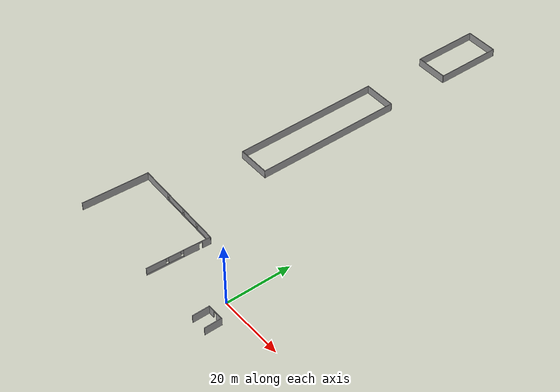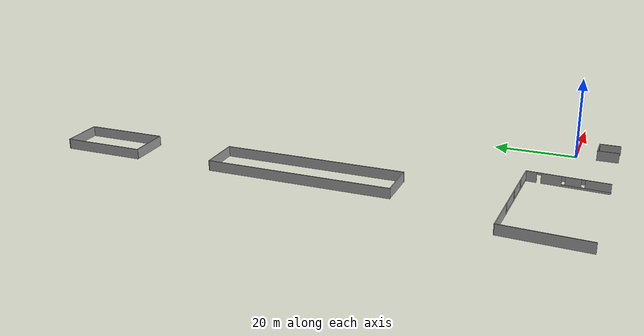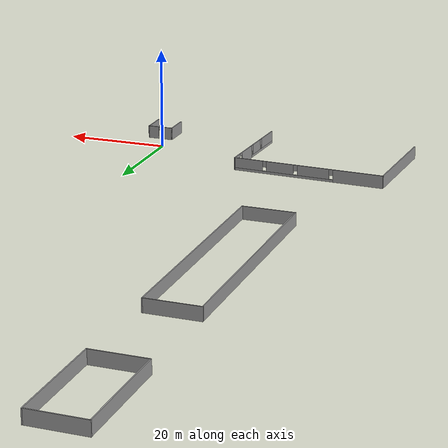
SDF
<?xml version='1.0'?>
<sdf version='1.4'>
  <model name='st_cyr_2'>
    <link name='Wall_0'>
      <collision name='Wall_0_Collision'>
        <geometry>
          <box>
            <size>20.225 0.2 2.5</size>
          </box>
        </geometry>
        <pose>0 0 1.25 0 -0 0</pose>
      </collision>
      <visual name='Wall_0_Visual'>
        <pose>0 0 1.25 0 -0 0</pose>
        <geometry>
          <box>
            <size>20.225 0.2 2.5</size>
          </box>
        </geometry>
        <material>
          <script>
            <uri>file://media/materials/scripts/gazebo.material</uri>
            <name>Gazebo/Grey</name>
          </script>
        </material>
      </visual>
      <velocity_decay>
        <linear>0</linear>
        <angular>0</angular>
      </velocity_decay>
      <pose>-49.5 0 0 0 -0 1.52084</pose>
    </link>
    <link name='Wall_1'>
      <pose>-34 9.5 0 0 0 -0.033321</pose>
      <visual name='Wall_1_Visual_0'>
        <pose>-10.1177 0 1.25 0 -0 0</pose>
        <geometry>
          <box>
            <size>9.98129 0.2 2.5</size>
          </box>
        </geometry>
        <material>
          <script>
            <uri>file://media/materials/scripts/gazebo.material</uri>
            <name>Gazebo/Grey</name>
          </script>
        </material>
      </visual>
      <collision name='Wall_1_Collision_0'>
        <geometry>
          <box>
            <size>9.98129 0.2 2.5</size>
          </box>
        </geometry>
        <pose>-10.1177 0 1.25 0 -0 0</pose>
      </collision>
      <visual name='Wall_1_Visual_1'>
        <pose>4.99065 0 0.25 0 -0 0</pose>
        <geometry>
          <box>
            <size>20.2354 0.2 0.5</size>
          </box>
        </geometry>
        <material>
          <script>
            <uri>file://media/materials/scripts/gazebo.material</uri>
            <name>Gazebo/Grey</name>
          </script>
        </material>
      </visual>
      <collision name='Wall_1_Collision_1'>
        <geometry>
          <box>
            <size>20.2354 0.2 0.5</size>
          </box>
        </geometry>
        <pose>4.99065 0 0.25 0 -0 0</pose>
      </collision>
      <visual name='Wall_1_Visual_2'>
        <pose>-1.11012 0 1.5 0 -0 0</pose>
        <geometry>
          <box>
            <size>6.43387 0.2 2</size>
          </box>
        </geometry>
        <material>
          <script>
            <uri>file://media/materials/scripts/gazebo.material</uri>
            <name>Gazebo/Grey</name>
          </script>
        </material>
      </visual>
      <collision name='Wall_1_Collision_2'>
        <geometry>
          <box>
            <size>6.43387 0.2 2</size>
          </box>
        </geometry>
        <pose>-1.11012 0 1.5 0 -0 0</pose>
      </collision>
      <visual name='Wall_1_Visual_3'>
        <pose>5.65364 0 1.5 0 -0 0</pose>
        <geometry>
          <box>
            <size>5.49367 0.2 2</size>
          </box>
        </geometry>
        <material>
          <script>
            <uri>file://media/materials/scripts/gazebo.material</uri>
            <name>Gazebo/Grey</name>
          </script>
        </material>
      </visual>
      <collision name='Wall_1_Collision_3'>
        <geometry>
          <box>
            <size>5.49367 0.2 2</size>
          </box>
        </geometry>
        <pose>5.65364 0 1.5 0 -0 0</pose>
      </collision>
      <visual name='Wall_1_Visual_4'>
        <pose>12.1544 0 1.5 0 -0 0</pose>
        <geometry>
          <box>
            <size>5.90787 0.2 2</size>
          </box>
        </geometry>
        <material>
          <script>
            <uri>file://media/materials/scripts/gazebo.material</uri>
            <name>Gazebo/Grey</name>
          </script>
        </material>
      </visual>
      <collision name='Wall_1_Collision_4'>
        <geometry>
          <box>
            <size>5.90787 0.2 2</size>
          </box>
        </geometry>
        <pose>12.1544 0 1.5 0 -0 0</pose>
      </collision>
      <visual name='Wall_1_Visual_5'>
        <pose>-4.72706 0 1.9 0 -0 0</pose>
        <geometry>
          <box>
            <size>0.8 0.2 1.2</size>
          </box>
        </geometry>
        <material>
          <script>
            <uri>file://media/materials/scripts/gazebo.material</uri>
            <name>Gazebo/Grey</name>
          </script>
        </material>
      </visual>
      <collision name='Wall_1_Collision_5'>
        <geometry>
          <box>
            <size>0.8 0.2 1.2</size>
          </box>
        </geometry>
        <pose>-4.72706 0 1.9 0 -0 0</pose>
      </collision>
      <visual name='Wall_1_Visual_6'>
        <pose>2.50681 0 1.9 0 -0 0</pose>
        <geometry>
          <box>
            <size>0.8 0.2 1.2</size>
          </box>
        </geometry>
        <material>
          <script>
            <uri>file://media/materials/scripts/gazebo.material</uri>
            <name>Gazebo/Grey</name>
          </script>
        </material>
      </visual>
      <collision name='Wall_1_Collision_6'>
        <geometry>
          <box>
            <size>0.8 0.2 1.2</size>
          </box>
        </geometry>
        <pose>2.50681 0 1.9 0 -0 0</pose>
      </collision>
      <visual name='Wall_1_Visual_7'>
        <pose>8.80048 0 1.9 0 -0 0</pose>
        <geometry>
          <box>
            <size>0.8 0.2 1.2</size>
          </box>
        </geometry>
        <material>
          <script>
            <uri>file://media/materials/scripts/gazebo.material</uri>
            <name>Gazebo/Grey</name>
          </script>
        </material>
      </visual>
      <collision name='Wall_1_Collision_7'>
        <geometry>
          <box>
            <size>0.8 0.2 1.2</size>
          </box>
        </geometry>
        <pose>8.80048 0 1.9 0 -0 0</pose>
      </collision>
    </link>
    <link name='Wall_10'>
      <collision name='Wall_10_Collision'>
        <geometry>
          <box>
            <size>45.2 0.2 2.5</size>
          </box>
        </geometry>
        <pose>0 0 1.25 0 -0 0</pose>
      </collision>
      <visual name='Wall_10_Visual'>
        <pose>0 0 1.25 0 -0 0</pose>
        <geometry>
          <box>
            <size>45.2 0.2 2.5</size>
          </box>
        </geometry>
        <material>
          <script>
            <uri>file://media/materials/scripts/gazebo.material</uri>
            <name>Gazebo/Grey</name>
          </script>
        </material>
      </visual>
      <velocity_decay>
        <linear>0</linear>
        <angular>0</angular>
      </velocity_decay>
      <pose>-30 57.5 0 0 -0 1.5708</pose>
    </link>
    <link name='Wall_11'>
      <collision name='Wall_11_Collision'>
        <geometry>
          <box>
            <size>10.2 0.2 2.5</size>
          </box>
        </geometry>
        <pose>0 0 1.25 0 -0 0</pose>
      </collision>
      <visual name='Wall_11_Visual'>
        <pose>0 0 1.25 0 -0 0</pose>
        <geometry>
          <box>
            <size>10.2 0.2 2.5</size>
          </box>
        </geometry>
        <material>
          <script>
            <uri>file://media/materials/scripts/gazebo.material</uri>
            <name>Gazebo/Grey</name>
          </script>
        </material>
      </visual>
      <velocity_decay>
        <linear>0</linear>
        <angular>0</angular>
      </velocity_decay>
      <pose>-35 80 0 0 -0 3.14159</pose>
    </link>
    <link name='Wall_13'>
      <collision name='Wall_13_Collision'>
        <geometry>
          <box>
            <size>20.2 0.2 2.5</size>
          </box>
        </geometry>
        <pose>0 0 1.25 0 -0 0</pose>
      </collision>
      <visual name='Wall_13_Visual'>
        <pose>0 0 1.25 0 -0 0</pose>
        <geometry>
          <box>
            <size>20.2 0.2 2.5</size>
          </box>
        </geometry>
        <material>
          <script>
            <uri>file://media/materials/scripts/gazebo.material</uri>
            <name>Gazebo/Grey</name>
          </script>
        </material>
      </visual>
      <velocity_decay>
        <linear>0</linear>
        <angular>0</angular>
      </velocity_decay>
      <pose>-40 110 0 0 0 -1.5708</pose>
    </link>
    <link name='Wall_14'>
      <collision name='Wall_14_Collision'>
        <geometry>
          <box>
            <size>10.2 0.2 2.5</size>
          </box>
        </geometry>
        <pose>0 0 1.25 0 -0 0</pose>
      </collision>
      <visual name='Wall_14_Visual'>
        <pose>0 0 1.25 0 -0 0</pose>
        <geometry>
          <box>
            <size>10.2 0.2 2.5</size>
          </box>
        </geometry>
        <material>
          <script>
            <uri>file://media/materials/scripts/gazebo.material</uri>
            <name>Gazebo/Grey</name>
          </script>
        </material>
      </visual>
      <velocity_decay>
        <linear>0</linear>
        <angular>0</angular>
      </velocity_decay>
      <pose>-35 100 0 0 -0 0</pose>
    </link>
    <link name='Wall_15'>
      <collision name='Wall_15_Collision'>
        <geometry>
          <box>
            <size>20.2 0.2 2.5</size>
          </box>
        </geometry>
        <pose>0 0 1.25 0 -0 0</pose>
      </collision>
      <visual name='Wall_15_Visual'>
        <pose>0 0 1.25 0 -0 0</pose>
        <geometry>
          <box>
            <size>20.2 0.2 2.5</size>
          </box>
        </geometry>
        <material>
          <script>
            <uri>file://media/materials/scripts/gazebo.material</uri>
            <name>Gazebo/Grey</name>
          </script>
        </material>
      </visual>
      <velocity_decay>
        <linear>0</linear>
        <angular>0</angular>
      </velocity_decay>
      <pose>-30 110 0 0 -0 1.5708</pose>
    </link>
    <link name='Wall_16'>
      <collision name='Wall_16_Collision'>
        <geometry>
          <box>
            <size>10.2 0.2 2.5</size>
          </box>
        </geometry>
        <pose>0 0 1.25 0 -0 0</pose>
      </collision>
      <visual name='Wall_16_Visual'>
        <pose>0 0 1.25 0 -0 0</pose>
        <geometry>
          <box>
            <size>10.2 0.2 2.5</size>
          </box>
        </geometry>
        <material>
          <script>
            <uri>file://media/materials/scripts/gazebo.material</uri>
            <name>Gazebo/Grey</name>
          </script>
        </material>
      </visual>
      <velocity_decay>
        <linear>0</linear>
        <angular>0</angular>
      </velocity_decay>
      <pose>-35 120 0 0 -0 3.14159</pose>
    </link>
    <link name='Wall_2'>
      <pose>-19.5 -0.5 0 0 0 -1.62338</pose>
      <visual name='Wall_2_Visual_0'>
        <pose>-8.31308 0 1.25 0 -0 0</pose>
        <geometry>
          <box>
            <size>2.60014 0.2 2.5</size>
          </box>
        </geometry>
        <material>
          <script>
            <uri>file://media/materials/scripts/gazebo.material</uri>
            <name>Gazebo/Grey</name>
          </script>
        </material>
      </visual>
      <collision name='Wall_2_Collision_0'>
        <geometry>
          <box>
            <size>2.60014 0.2 2.5</size>
          </box>
        </geometry>
        <pose>-8.31308 0 1.25 0 -0 0</pose>
      </collision>
      <visual name='Wall_2_Visual_1'>
        <pose>-3.68568 0 1.25 0 -0 0</pose>
        <geometry>
          <box>
            <size>4.65465 0.2 2.5</size>
          </box>
        </geometry>
        <material>
          <script>
            <uri>file://media/materials/scripts/gazebo.material</uri>
            <name>Gazebo/Grey</name>
          </script>
        </material>
      </visual>
      <collision name='Wall_2_Collision_1'>
        <geometry>
          <box>
            <size>4.65465 0.2 2.5</size>
          </box>
        </geometry>
        <pose>-3.68568 0 1.25 0 -0 0</pose>
      </collision>
      <visual name='Wall_2_Visual_2'>
        <pose>4.1274 0 0.25 0 -0 0</pose>
        <geometry>
          <box>
            <size>10.9715 0.2 0.5</size>
          </box>
        </geometry>
        <material>
          <script>
            <uri>file://media/materials/scripts/gazebo.material</uri>
            <name>Gazebo/Grey</name>
          </script>
        </material>
      </visual>
      <collision name='Wall_2_Collision_2'>
        <geometry>
          <box>
            <size>10.9715 0.2 0.5</size>
          </box>
        </geometry>
        <pose>4.1274 0 0.25 0 -0 0</pose>
      </collision>
      <visual name='Wall_2_Visual_3'>
        <pose>1.25925 0 1.5 0 -0 0</pose>
        <geometry>
          <box>
            <size>3.63521 0.2 2</size>
          </box>
        </geometry>
        <material>
          <script>
            <uri>file://media/materials/scripts/gazebo.material</uri>
            <name>Gazebo/Grey</name>
          </script>
        </material>
      </visual>
      <collision name='Wall_2_Collision_3'>
        <geometry>
          <box>
            <size>3.63521 0.2 2</size>
          </box>
        </geometry>
        <pose>1.25925 0 1.5 0 -0 0</pose>
      </collision>
      <visual name='Wall_2_Visual_4'>
        <pose>6.745 0 1.5 0 -0 0</pose>
        <geometry>
          <box>
            <size>5.7363 0.2 2</size>
          </box>
        </geometry>
        <material>
          <script>
            <uri>file://media/materials/scripts/gazebo.material</uri>
            <name>Gazebo/Grey</name>
          </script>
        </material>
      </visual>
      <collision name='Wall_2_Collision_4'>
        <geometry>
          <box>
            <size>5.7363 0.2 2</size>
          </box>
        </geometry>
        <pose>6.745 0 1.5 0 -0 0</pose>
      </collision>
      <visual name='Wall_2_Visual_5'>
        <pose>-0.958357 0 1.9 0 -0 0</pose>
        <geometry>
          <box>
            <size>0.8 0.2 1.2</size>
          </box>
        </geometry>
        <material>
          <script>
            <uri>file://media/materials/scripts/gazebo.material</uri>
            <name>Gazebo/Grey</name>
          </script>
        </material>
      </visual>
      <collision name='Wall_2_Collision_5'>
        <geometry>
          <box>
            <size>0.8 0.2 1.2</size>
          </box>
        </geometry>
        <pose>-0.958357 0 1.9 0 -0 0</pose>
      </collision>
      <visual name='Wall_2_Visual_6'>
        <pose>3.47685 0 1.9 0 -0 0</pose>
        <geometry>
          <box>
            <size>0.8 0.2 1.2</size>
          </box>
        </geometry>
        <material>
          <script>
            <uri>file://media/materials/scripts/gazebo.material</uri>
            <name>Gazebo/Grey</name>
          </script>
        </material>
      </visual>
      <collision name='Wall_2_Collision_6'>
        <geometry>
          <box>
            <size>0.8 0.2 1.2</size>
          </box>
        </geometry>
        <pose>3.47685 0 1.9 0 -0 0</pose>
      </collision>
      <visual name='Wall_2_Visual_7'>
        <pose>-6.51301 0 2.25 0 -0 0</pose>
        <geometry>
          <box>
            <size>1 0.2 0.5</size>
          </box>
        </geometry>
        <material>
          <script>
            <uri>file://media/materials/scripts/gazebo.material</uri>
            <name>Gazebo/Grey</name>
          </script>
        </material>
      </visual>
      <collision name='Wall_2_Collision_7'>
        <geometry>
          <box>
            <size>1 0.2 0.5</size>
          </box>
        </geometry>
        <pose>-6.51301 0 2.25 0 -0 0</pose>
      </collision>
    </link>
    <link name='Wall_4'>
      <collision name='Wall_4_Collision'>
        <geometry>
          <box>
            <size>5.2 0.2 2.5</size>
          </box>
        </geometry>
        <pose>0 0 1.25 0 -0 0</pose>
      </collision>
      <visual name='Wall_4_Visual'>
        <pose>0 0 1.25 0 -0 0</pose>
        <geometry>
          <box>
            <size>5.2 0.2 2.5</size>
          </box>
        </geometry>
        <material>
          <script>
            <uri>file://media/materials/scripts/gazebo.material</uri>
            <name>Gazebo/Grey</name>
          </script>
        </material>
      </visual>
      <velocity_decay>
        <linear>0</linear>
        <angular>0</angular>
      </velocity_decay>
      <pose>0 -7.5 0 0 -0 1.5708</pose>
    </link>
    <link name='Wall_5'>
      <pose>2.5 -5 0 0 -0 0</pose>
      <visual name='Wall_5_Visual_0'>
        <pose>-1.61975 0 1.25 0 -0 0</pose>
        <geometry>
          <box>
            <size>1.9605 0.2 2.5</size>
          </box>
        </geometry>
        <material>
          <script>
            <uri>file://media/materials/scripts/gazebo.material</uri>
            <name>Gazebo/Grey</name>
          </script>
        </material>
      </visual>
      <collision name='Wall_5_Collision_0'>
        <geometry>
          <box>
            <size>1.9605 0.2 2.5</size>
          </box>
        </geometry>
        <pose>-1.61975 0 1.25 0 -0 0</pose>
      </collision>
      <visual name='Wall_5_Visual_1'>
        <pose>1.48025 0 1.25 0 -0 0</pose>
        <geometry>
          <box>
            <size>2.2395 0.2 2.5</size>
          </box>
        </geometry>
        <material>
          <script>
            <uri>file://media/materials/scripts/gazebo.material</uri>
            <name>Gazebo/Grey</name>
          </script>
        </material>
      </visual>
      <collision name='Wall_5_Collision_1'>
        <geometry>
          <box>
            <size>2.2395 0.2 2.5</size>
          </box>
        </geometry>
        <pose>1.48025 0 1.25 0 -0 0</pose>
      </collision>
      <visual name='Wall_5_Visual_2'>
        <pose>-0.139498 0 2.25 0 -0 0</pose>
        <geometry>
          <box>
            <size>1 0.2 0.5</size>
          </box>
        </geometry>
        <material>
          <script>
            <uri>file://media/materials/scripts/gazebo.material</uri>
            <name>Gazebo/Grey</name>
          </script>
        </material>
      </visual>
      <collision name='Wall_5_Collision_2'>
        <geometry>
          <box>
            <size>1 0.2 0.5</size>
          </box>
        </geometry>
        <pose>-0.139498 0 2.25 0 -0 0</pose>
      </collision>
    </link>
    <link name='Wall_6'>
      <collision name='Wall_6_Collision'>
        <geometry>
          <box>
            <size>5.2 0.2 2.5</size>
          </box>
        </geometry>
        <pose>0 0 1.25 0 -0 0</pose>
      </collision>
      <visual name='Wall_6_Visual'>
        <pose>0 0 1.25 0 -0 0</pose>
        <geometry>
          <box>
            <size>5.2 0.2 2.5</size>
          </box>
        </geometry>
        <material>
          <script>
            <uri>file://media/materials/scripts/gazebo.material</uri>
            <name>Gazebo/Grey</name>
          </script>
        </material>
      </visual>
      <velocity_decay>
        <linear>0</linear>
        <angular>0</angular>
      </velocity_decay>
      <pose>5 -7.5 0 0 0 -1.5708</pose>
    </link>
    <link name='Wall_8'>
      <collision name='Wall_8_Collision'>
        <geometry>
          <box>
            <size>45.2 0.2 2.5</size>
          </box>
        </geometry>
        <pose>0 0 1.25 0 -0 0</pose>
      </collision>
      <visual name='Wall_8_Visual'>
        <pose>0 0 1.25 0 -0 0</pose>
        <geometry>
          <box>
            <size>45.2 0.2 2.5</size>
          </box>
        </geometry>
        <material>
          <script>
            <uri>file://media/materials/scripts/gazebo.material</uri>
            <name>Gazebo/Grey</name>
          </script>
        </material>
      </visual>
      <velocity_decay>
        <linear>0</linear>
        <angular>0</angular>
      </velocity_decay>
      <pose>-40 57.5 0 0 0 -1.5708</pose>
    </link>
    <link name='Wall_9'>
      <collision name='Wall_9_Collision'>
        <geometry>
          <box>
            <size>10.2 0.2 2.5</size>
          </box>
        </geometry>
        <pose>0 0 1.25 0 -0 0</pose>
      </collision>
      <visual name='Wall_9_Visual'>
        <pose>0 0 1.25 0 -0 0</pose>
        <geometry>
          <box>
            <size>10.2 0.2 2.5</size>
          </box>
        </geometry>
        <material>
          <script>
            <uri>file://media/materials/scripts/gazebo.material</uri>
            <name>Gazebo/Grey</name>
          </script>
        </material>
      </visual>
      <velocity_decay>
        <linear>0</linear>
        <angular>0</angular>
      </velocity_decay>
      <pose>-35 35 0 0 -0 0</pose>
    </link>
    <static>1</static>
  </model>
</sdf>
